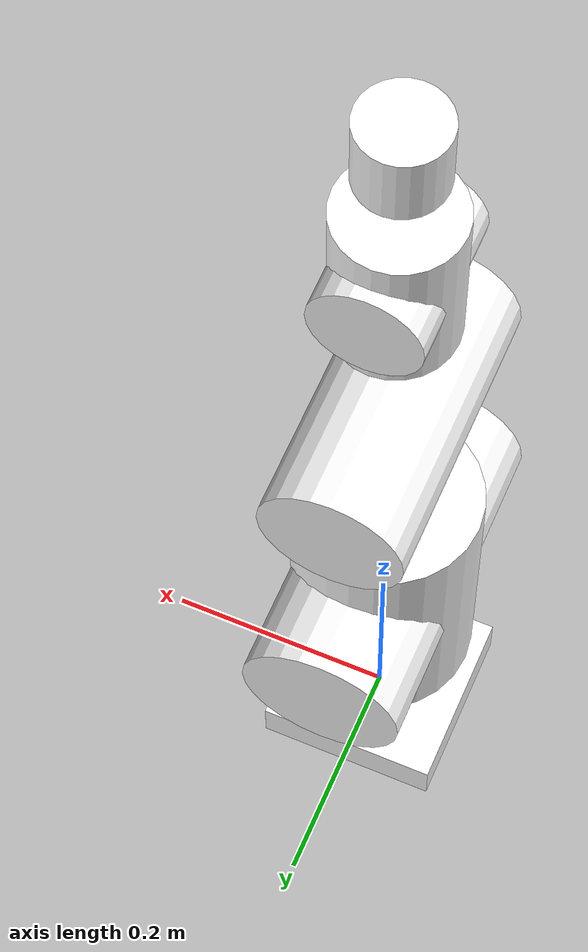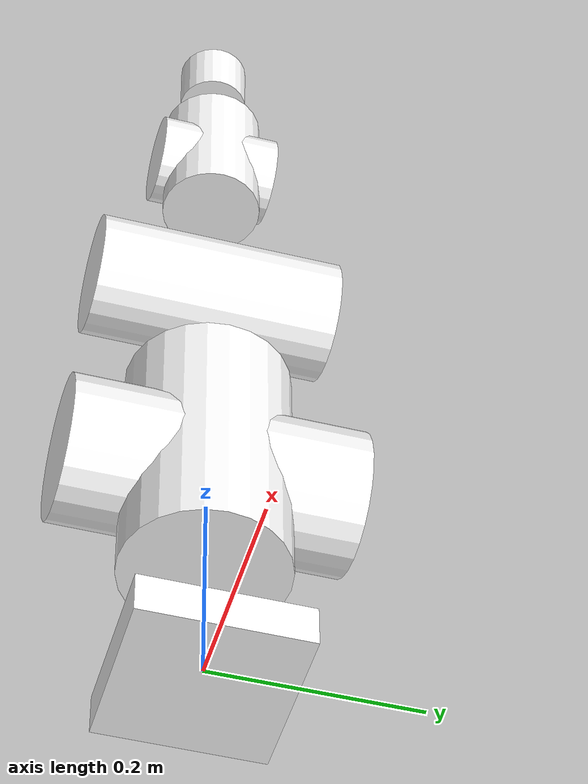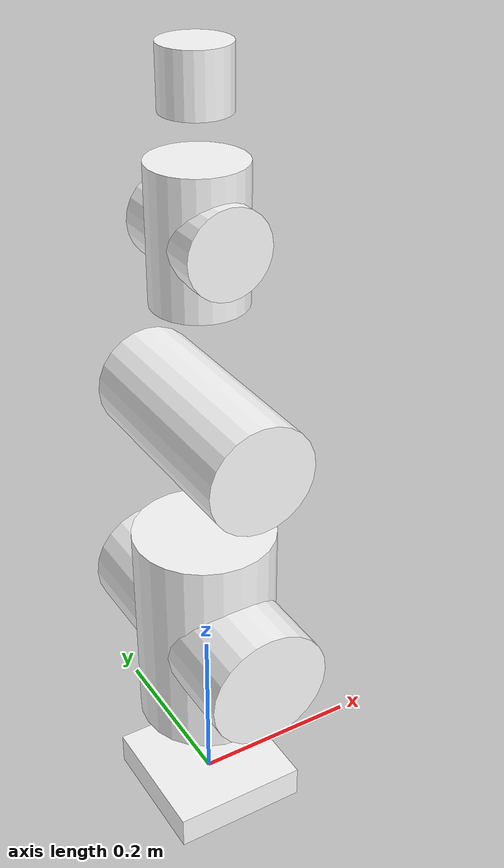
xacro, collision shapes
<?xml version="1.0" encoding="utf-8"?>
<robot name="rm_65_description" xmlns:xacro="http://www.ros.org/wiki/xacro">
<!-- link6_type -->
<xacro:arg name="link6_type" default="Link6" />
<!-- arg->property -->
<xacro:property name="link6_type" value="$(arg link6_type)" />
  <!-- Inertial matrix -->

  <!-- ///////////////////////////////////////   bottom_joint   ////////////////////////////////////////// -->

  <link
    name="base_link">
    <inertial>
      <origin
        xyz="-0.000433277303987328 -3.54664423471128E-05 0.0599427668933796"
        rpy="0 0 0" />
      <mass
        value="0.841070778135659" />
      <inertia
        ixx="0.0017261110801622"
        ixy="2.52746264980217E-06"
        ixz="-3.67690303614961E-05"
        iyy="0.00170987405835604"
        iyz="1.67996364994424E-06"
        izz="0.000904023422915791" />
    </inertial>
    <visual>
      <origin
        xyz="0 0 0"
        rpy="0 0 0" />
      <geometry>
        <mesh
          filename="package://omr_bringup/urdf/arm/meshes/rm_65_arm/base_link.STL" />
      </geometry>
      <material
        name="">
        <color
          rgba="1 1 1 1" />
      </material>
    </visual>
    <collision>
      <origin
        xyz="0 0 0"
        rpy="0 0 0" />
      <geometry>
        <box size="0.16 0.16 0.04" />
      </geometry>
    </collision>
  </link>
  <link
    name="Link1">
    <inertial>
      <origin
        xyz="1.2226305431569E-08 0.0211079974844683 -0.0251854220842269"
        rpy="0 0 0" />
      <mass
        value="0.593563443690403" />
      <inertia
        ixx="0.00126614120341847"
        ixy="-1.294980943835E-08"
        ixz="-9.80120923066996E-09"
        iyy="0.00118168178300364"
        iyz="-0.00021121727444415"
        izz="0.00056135241627747" />
    </inertial>
    <visual>
      <origin
        xyz="0 0 0"
        rpy="0 0 0" />
      <geometry>
        <mesh
          filename="package://omr_bringup/urdf/arm/meshes/rm_65_arm/link1.STL" />
      </geometry>
      <material
        name="">
        <color
          rgba="1 1 1 1" />
      </material>
    </visual>
    <collision>
      <origin
        xyz="0 0 0"
        rpy="0 0 0" />
      <geometry>
        <cylinder radius="0.08" length="0.25" />
      </geometry>
    </collision>
  </link>
  <joint
    name="joint1"
    type="revolute">
    <origin
      xyz="0 0 0.2405"
      rpy="0 0 0" />
    <parent
      link="base_link" />
    <child
      link="Link1" />
    <axis
      xyz="0 0 1" />
    <limit
      lower="-3.1"
      upper="3.1"
      effort="60"
      velocity="3.14" />
  </joint>
  <link
    name="Link2">
    <inertial>
      <origin
        xyz="0.152256463426163 4.75383656106654E-07 -0.00620260383607792"
        rpy="0 0 0" />
      <mass
        value="0.864175046869043" />
      <inertia
        ixx="0.00089150298478414"
        ixy="-2.23268489334765E-08"
        ixz="0.00156246461035015"
        iyy="0.00733754343083901"
        iyz="6.28110889329165E-09"
        izz="0.00697869103915473" />
    </inertial>
    <visual>
      <origin
        xyz="0 0 0"
        rpy="0 0 0" />
      <geometry>
        <mesh
          filename="package://omr_bringup/urdf/arm/meshes/rm_65_arm/link2.STL" />
      </geometry>
      <material
        name="">
        <color
          rgba="1 1 1 1" />
      </material>
    </visual>
    <collision>
      <origin
        xyz="0 0 0"
        rpy="0 0 0" />
      <geometry>
        <cylinder radius="0.07" length="0.28" />
      </geometry>
    </collision>
  </link>
  <joint
    name="joint2"
    type="revolute">
    <origin
      xyz="0 0 0"
      rpy="1.5708 -1.5708 0" />
    <parent
      link="Link1" />
    <child
      link="Link2" />
    <axis
      xyz="0 0 1" />
    <limit
      lower="-2.268"
      upper="2.268"
      effort="60"
      velocity="3.14" />
  </joint>
  <link
    name="Link3">
    <inertial>
      <origin
        xyz="5.05312670989961E-06 -0.0595925663694732 0.010569069212336"
        rpy="0 0 0" />
      <mass
        value="0.289633681624654" />
      <inertia
        ixx="0.00063737100450158"
        ixy="-7.05261293649751E-08"
        ixz="-3.86643272239426E-08"
        iyy="0.00015648388095025"
        iyz="-0.00014461035994916"
        izz="0.000614178164773085" />
    </inertial>
    <visual>
      <origin
        xyz="0 0 0"
        rpy="0 0 0" />
      <geometry>
        <mesh
          filename="package://omr_bringup/urdf/arm/meshes/rm_65_arm/link3.STL" />
      </geometry>
      <material
        name="">
        <color
          rgba="1 1 1 1" />
      </material>
    </visual>
    <collision>
      <origin
        xyz="0 0 0"
        rpy="0 0 0" />
      <geometry>
        <cylinder radius="0.06" length="0.24" />
      </geometry>
    </collision>
  </link>
  <joint
    name="joint3"
    type="revolute">
    <origin
      xyz="0.256 0 0"
      rpy="0 0 1.5708" />
    <parent
      link="Link2" />
    <child
      link="Link3" />
    <axis
      xyz="0 0 1" />
    <limit
      lower="-2.355"
      upper="2.355"
      effort="30"
      velocity="3.92" />
  </joint>
  <link
    name="Link4">
    <inertial>
      <origin
        xyz="1.15516617405898E-06 -0.0180424468598241 -0.0215394748352687"
        rpy="0 0 0" />
      <mass
        value="0.239419768320061" />
      <inertia
        ixx="0.000285938919722783"
        ixy="3.07101359163101E-09"
        ixz="-2.21994118981953E-09"
        iyy="0.000262727540304212"
        iyz="4.4236583260078E-05"
        izz="0.000119888082791859" />
    </inertial>
    <visual>
      <origin
        xyz="0 0 0"
        rpy="0 0 0" />
      <geometry>
        <mesh
          filename="package://omr_bringup/urdf/arm/meshes/rm_65_arm/link4.STL" />
      </geometry>
      <material
        name="">
        <color
          rgba="1 1 1 1" />
      </material>
    </visual>
    <collision>
      <origin
        xyz="0 0 0"
        rpy="0 0 0" />
      <geometry>
        <cylinder radius="0.05" length="0.14" />
      </geometry>
    </collision>
  </link>
  <joint
    name="joint4"
    type="revolute">
    <origin
      xyz="0 -0.21 0"
      rpy="1.5708 0 0" />
    <parent
      link="Link3" />
    <child
      link="Link4" />
    <axis
      xyz="0 0 1" />
    <limit
      lower="-3.1"
      upper="3.1"
      effort="10"
      velocity="3.92" />
  </joint>
  <link
    name="Link5">
    <inertial>
      <origin
        xyz="3.19794786262152E-06 -0.0593808368101458 0.00736804250989326"
        rpy="0 0 0" />
      <mass
        value="0.218799761431678" />
      <inertia
        ixx="0.000350540363914072"
        ixy="-3.41781619975602E-08"
        ixz="-1.77056457224373E-08"
        iyy="0.000104927867487581"
        iyz="-7.82431228461971E-05"
        izz="0.000334482418423629" />
    </inertial>
    <visual>
      <origin
        xyz="0 0 0"
        rpy="0 0 0" />
      <geometry>
        <mesh
          filename="package://omr_bringup/urdf/arm/meshes/rm_65_arm/link5.STL" />
      </geometry>
      <material
        name="">
        <color
          rgba="1 1 1 1" />
      </material>
    </visual>
    <collision>
      <origin
        xyz="0 0 0"
        rpy="0 0 0" />
      <geometry>
        <cylinder radius="0.045" length="0.12" />
      </geometry>
    </collision>
  </link>
  <joint
    name="joint5"
    type="revolute">
    <origin
      xyz="0 0 0"
      rpy="-1.5708 0 0" />
    <parent
      link="Link4" />
    <child
      link="Link5" />
    <axis
      xyz="0 0 1" />
    <limit
      lower="-2.233"
      upper="2.233"
      effort="10"
      velocity="3.92" />
  </joint>
  <xacro:if value="${ link6_type =='Link6' }">
    <link
      name="Link6">
      <inertial>
        <origin
          xyz="0.000714234511756999 -0.000396718732824521 -0.0126723660946126"
          rpy="0 0 0" />
        <mass
          value="0.0649018034311231" />
        <inertia
          ixx="2.02766547502765E-05"
          ixy="-1.32505200276849E-06"
          ixz="-2.5845091522508E-08"
          iyy="1.87986725225022E-05"
          iyz="3.39471452125439E-09"
          izz="3.17885459163081E-05" />
      </inertial>
      <visual>
        <origin
          xyz="0 0 0"
          rpy="0 0 0" />
        <geometry>
          <mesh
            filename="package://omr_bringup/urdf/arm/meshes/rm_65_arm/link6.STL" />
        </geometry>
        <material
          name="">
          <color
            rgba="1 1 1 1" />
        </material>
      </visual>
      <collision>
        <origin
          xyz="0 0 0"
          rpy="0 0 0" />
        <geometry>
          <cylinder radius="0.035" length="0.06" />
        </geometry>
      </collision>
    </link>
    <joint
      name="joint6"
      type="revolute">
      <origin
        xyz="0 -0.144 0"
        rpy="1.5708 0 0" />
      <parent
        link="Link5" />
      <child
        link="Link6" />
      <axis
        xyz="0 0 1" />
      <limit
        lower="-6.28"
        upper="6.28"
        effort="10"
        velocity="3.92" />
    </joint>
  </xacro:if>
  <xacro:if value="${ link6_type =='Link6_6f' }">
    <link
    name="Link6">
    <inertial>
      <origin
        xyz="0.00032231 -0.00017819 -0.028676"
        rpy="0 0 0" />
      <mass
        value="0.14433" />
      <inertia
        ixx="3.6119E-05"
        ixy="-1.3242E-06"
        ixz="-3.2733E-08"
        iyy="3.4626E-05"
        iyz="7.6661E-09"
        izz="6.1463E-05" />
      </inertial>
      <visual>
        <origin
          xyz="0 0 0"
          rpy="0 0 0" />
        <geometry>
          <mesh
            filename="package://omr_bringup/urdf/arm/meshes/rm_65_arm/link6_6f.STL" />
        </geometry>
        <material
          name="">
          <color
            rgba="1 1 1 1" />
        </material>
      </visual>
      <collision>
        <origin
          xyz="0 0 0"
          rpy="0 0 0" />
        <geometry>
          <cylinder radius="0.035" length="0.06" />
        </geometry>
      </collision>
    </link>
    <joint
      name="joint6"
      type="revolute">
      <origin
        xyz="0 -0.1725 0"
        rpy="1.5708 0 0" />
      <parent
        link="Link5" />
      <child
        link="Link6" />
      <axis
        xyz="0 0 1" />
      <limit
        lower="-6.283"
        upper="6.283"
        effort="100"
        velocity="1" />
    </joint>
  </xacro:if>
  <xacro:if value="${ link6_type =='Link6_6fb' }">
    <link
      name="Link6">
      <inertial>
        <origin
          xyz="0.000138559985614397 -0.00574537418929974 -0.535986173384404"
          rpy="0 0 0" />
        <mass
          value="3.04449097371379" />
        <inertia
          ixx="0.170810328289537"
          ixy="5.3822775672348E-07"
          ixz="0.000151207460728544"
          iyy="0.169967421523245"
          iyz="0.00105777172655597"
          izz="0.00305546066386606" />
      </inertial>
      <visual>
        <origin
          xyz="0 0 0"
          rpy="0 0 0" />
        <geometry>
          <mesh
            filename="package://omr_bringup/urdf/arm/meshes/rm_65_arm/link6_6fb.STL" />
        </geometry>
        <material
          name="">
          <color
            rgba="0.792156862745098 0.819607843137255 0.933333333333333 1" />
        </material>
      </visual>
      <collision>
        <origin
          xyz="0 0 0"
          rpy="0 0 0" />
        <geometry>
          <cylinder radius="0.04" length="0.12" />
        </geometry>
      </collision>
    </link>
    <joint
      name="joint6"
      type="revolute">
      <origin
        xyz="0 -0.1613 0"
        rpy="1.5708 0 0" />
      <parent
        link="Link5" />
      <child
        link="Link6" />
      <axis
        xyz="0 0 1" />
      <limit
        lower="-6.28"
        upper="6.28"
        effort="10"
        velocity="3.14" />
    </joint>
  </xacro:if>

</robot>
